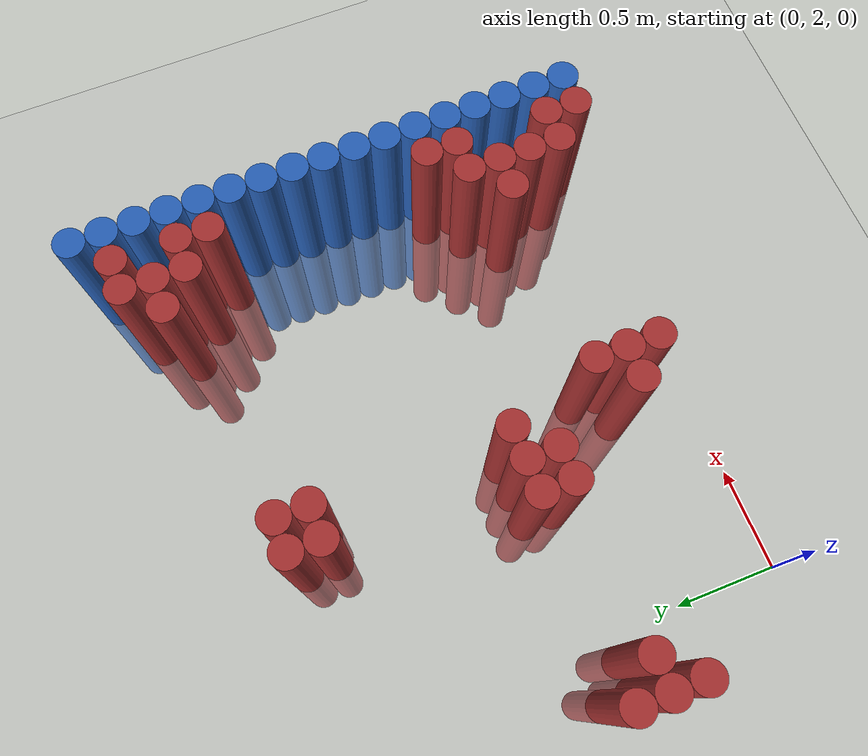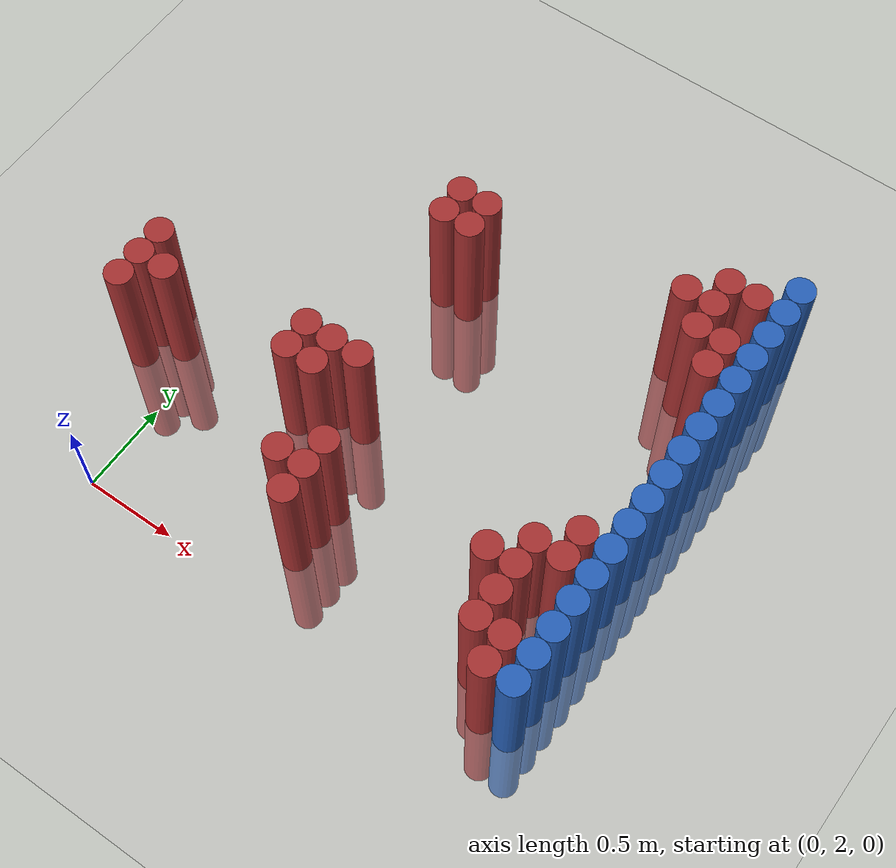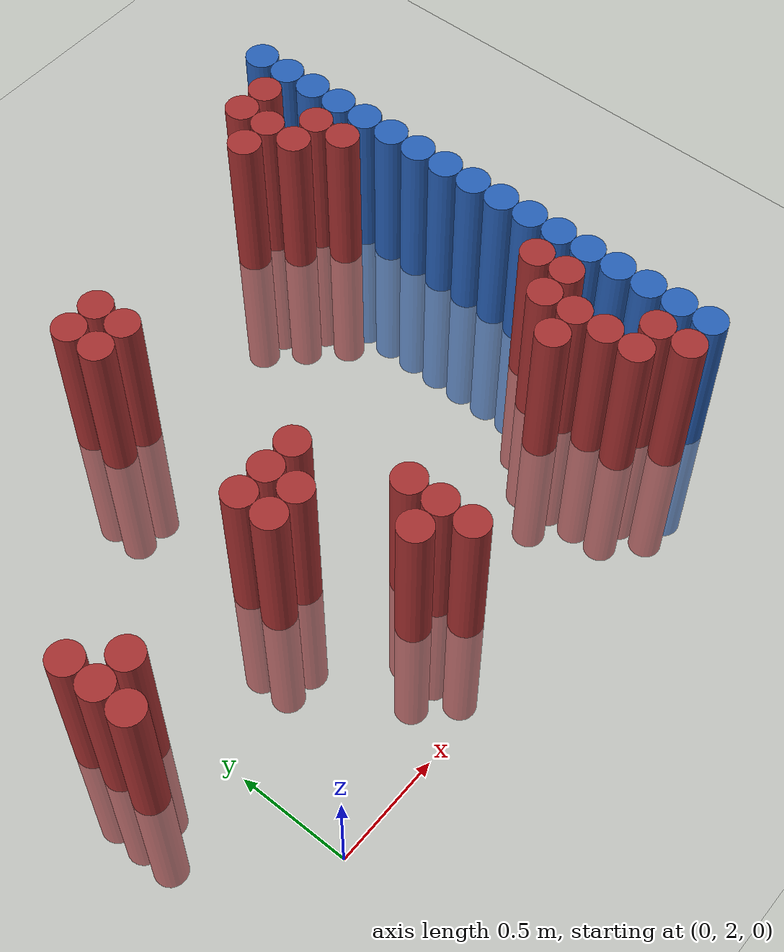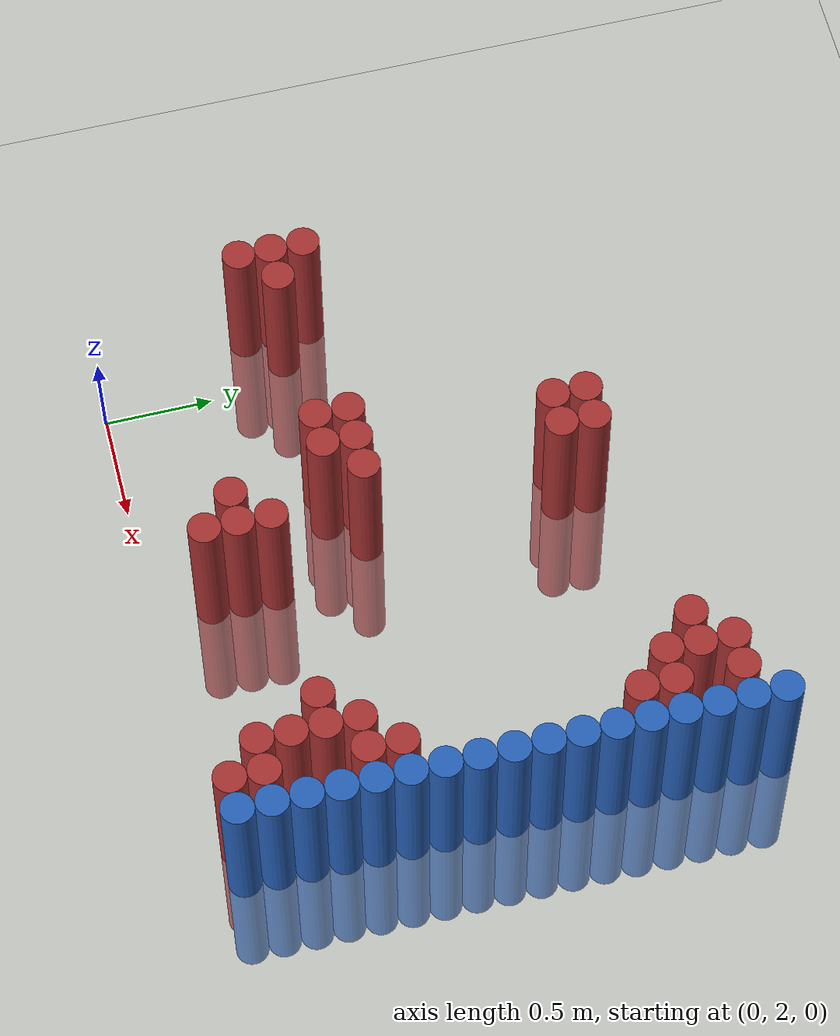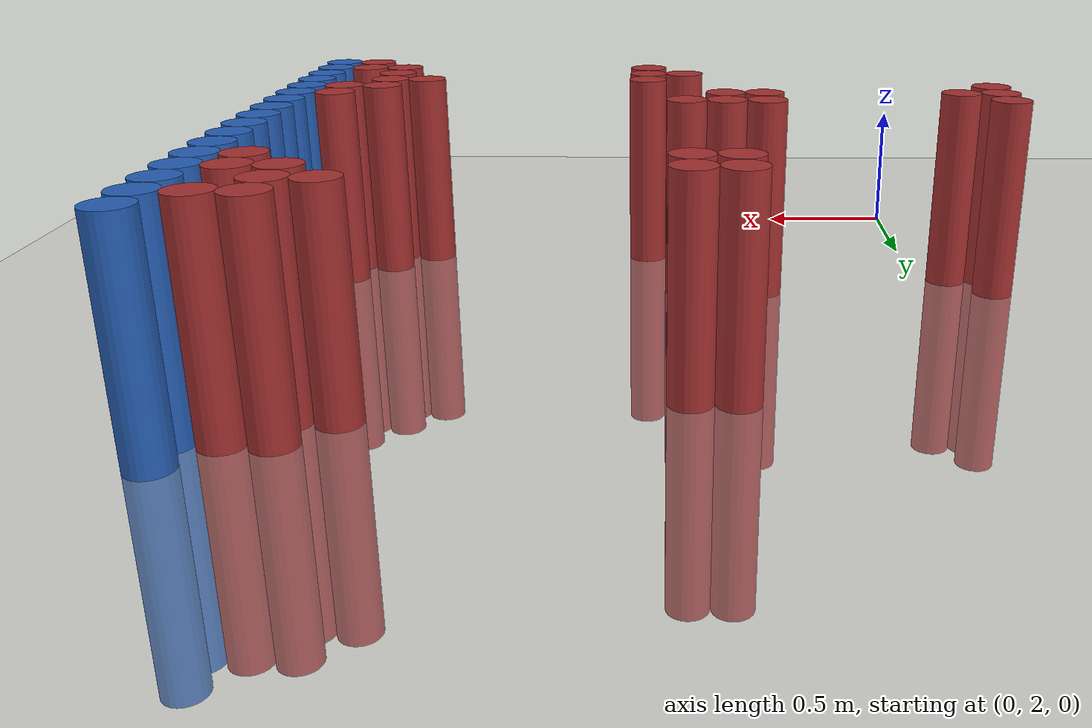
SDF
<sdf version="1.6">
 <world name="default">
  <model name="ground_plane">
   <static>1</static>
   <link name="link">
    <collision name="collision">
     <geometry><plane><normal>0 0 1</normal><size>100 100</size></plane></geometry>
     <surface><friction><ode><mu>100</mu><mu2>50</mu2></ode></friction></surface>
    </collision>
    <visual name="visual">
     <cast_shadows>0</cast_shadows>
     <geometry><plane><normal>0 0 1</normal><size>100 100</size></plane></geometry>
     <material>
      <script><uri>file://media/materials/scripts/gazebo.material</uri><name>Gazebo/Grey</name></script>
     </material>
    </visual>
   </link>
  </model>
  <model name="unit_cylinder_148">
   <static>1</static>
   <pose>-0.275000 2.725000 0.000000 0.000000 0.000000 0.000000</pose>
   <link name="link">
    <inertial>
     <mass>1</mass>
     <inertia><ixx>0.145833</ixx><ixy>0</ixy><ixz>0</ixz><iyy>0.145833</iyy><iyz>0</iyz><izz>0.125</izz></inertia>
    </inertial>
    <collision name="collision">
     <geometry><cylinder><radius>0.075000</radius><length>1.5</length></cylinder></geometry>
    </collision>
    <visual name="visual">
     <geometry><cylinder><radius>0.075000</radius><length>1.5</length></cylinder></geometry>
     <material>
      <ambient>0.648000 0.192000 0.192000 1</ambient>
      <diffuse>0.648000 0.192000 0.192000 1</diffuse>
     </material>
     <material>
      <script><name>Gazebo/Grey</name><uri>file://media/materials/scripts/gazebo.material</uri></script>
     </material>
    </visual>
   </link>
  </model>
  <model name="unit_cylinder_149">
   <static>1</static>
   <pose>-0.275000 2.875000 0.000000 0.000000 0.000000 0.000000</pose>
   <link name="link">
    <inertial>
     <mass>1</mass>
     <inertia><ixx>0.145833</ixx><ixy>0</ixy><ixz>0</ixz><iyy>0.145833</iyy><iyz>0</iyz><izz>0.125</izz></inertia>
    </inertial>
    <collision name="collision">
     <geometry><cylinder><radius>0.075000</radius><length>1.5</length></cylinder></geometry>
    </collision>
    <visual name="visual">
     <geometry><cylinder><radius>0.075000</radius><length>1.5</length></cylinder></geometry>
     <material>
      <ambient>0.648000 0.192000 0.192000 1</ambient>
      <diffuse>0.648000 0.192000 0.192000 1</diffuse>
     </material>
     <material>
      <script><name>Gazebo/Grey</name><uri>file://media/materials/scripts/gazebo.material</uri></script>
     </material>
    </visual>
   </link>
  </model>
  <model name="unit_cylinder_150">
   <static>1</static>
   <pose>-0.275000 3.025000 0.000000 0.000000 0.000000 0.000000</pose>
   <link name="link">
    <inertial>
     <mass>1</mass>
     <inertia><ixx>0.145833</ixx><ixy>0</ixy><ixz>0</ixz><iyy>0.145833</iyy><iyz>0</iyz><izz>0.125</izz></inertia>
    </inertial>
    <collision name="collision">
     <geometry><cylinder><radius>0.075000</radius><length>1.5</length></cylinder></geometry>
    </collision>
    <visual name="visual">
     <geometry><cylinder><radius>0.075000</radius><length>1.5</length></cylinder></geometry>
     <material>
      <ambient>0.648000 0.192000 0.192000 1</ambient>
      <diffuse>0.648000 0.192000 0.192000 1</diffuse>
     </material>
     <material>
      <script><name>Gazebo/Grey</name><uri>file://media/materials/scripts/gazebo.material</uri></script>
     </material>
    </visual>
   </link>
  </model>
  <model name="unit_cylinder_154">
   <static>1</static>
   <pose>-0.125000 2.875000 0.000000 0.000000 0.000000 0.000000</pose>
   <link name="link">
    <inertial>
     <mass>1</mass>
     <inertia><ixx>0.145833</ixx><ixy>0</ixy><ixz>0</ixz><iyy>0.145833</iyy><iyz>0</iyz><izz>0.125</izz></inertia>
    </inertial>
    <collision name="collision">
     <geometry><cylinder><radius>0.075000</radius><length>1.5</length></cylinder></geometry>
    </collision>
    <visual name="visual">
     <geometry><cylinder><radius>0.075000</radius><length>1.5</length></cylinder></geometry>
     <material>
      <ambient>0.648000 0.192000 0.192000 1</ambient>
      <diffuse>0.648000 0.192000 0.192000 1</diffuse>
     </material>
     <material>
      <script><name>Gazebo/Grey</name><uri>file://media/materials/scripts/gazebo.material</uri></script>
     </material>
    </visual>
   </link>
  </model>
  <model name="unit_cylinder_164">
   <static>1</static>
   <pose>0.625000 2.875000 0.000000 0.000000 0.000000 0.000000</pose>
   <link name="link">
    <inertial>
     <mass>1</mass>
     <inertia><ixx>0.145833</ixx><ixy>0</ixy><ixz>0</ixz><iyy>0.145833</iyy><iyz>0</iyz><izz>0.125</izz></inertia>
    </inertial>
    <collision name="collision">
     <geometry><cylinder><radius>0.075000</radius><length>1.5</length></cylinder></geometry>
    </collision>
    <visual name="visual">
     <geometry><cylinder><radius>0.075000</radius><length>1.5</length></cylinder></geometry>
     <material>
      <ambient>0.648000 0.192000 0.192000 1</ambient>
      <diffuse>0.648000 0.192000 0.192000 1</diffuse>
     </material>
     <material>
      <script><name>Gazebo/Grey</name><uri>file://media/materials/scripts/gazebo.material</uri></script>
     </material>
    </visual>
   </link>
  </model>
  <model name="unit_cylinder_165">
   <static>1</static>
   <pose>0.625000 3.025000 0.000000 0.000000 0.000000 0.000000</pose>
   <link name="link">
    <inertial>
     <mass>1</mass>
     <inertia><ixx>0.145833</ixx><ixy>0</ixy><ixz>0</ixz><iyy>0.145833</iyy><iyz>0</iyz><izz>0.125</izz></inertia>
    </inertial>
    <collision name="collision">
     <geometry><cylinder><radius>0.075000</radius><length>1.5</length></cylinder></geometry>
    </collision>
    <visual name="visual">
     <geometry><cylinder><radius>0.075000</radius><length>1.5</length></cylinder></geometry>
     <material>
      <ambient>0.648000 0.192000 0.192000 1</ambient>
      <diffuse>0.648000 0.192000 0.192000 1</diffuse>
     </material>
     <material>
      <script><name>Gazebo/Grey</name><uri>file://media/materials/scripts/gazebo.material</uri></script>
     </material>
    </visual>
   </link>
  </model>
  <model name="unit_cylinder_170">
   <static>1</static>
   <pose>0.775000 2.875000 0.000000 0.000000 0.000000 0.000000</pose>
   <link name="link">
    <inertial>
     <mass>1</mass>
     <inertia><ixx>0.145833</ixx><ixy>0</ixy><ixz>0</ixz><iyy>0.145833</iyy><iyz>0</iyz><izz>0.125</izz></inertia>
    </inertial>
    <collision name="collision">
     <geometry><cylinder><radius>0.075000</radius><length>1.5</length></cylinder></geometry>
    </collision>
    <visual name="visual">
     <geometry><cylinder><radius>0.075000</radius><length>1.5</length></cylinder></geometry>
     <material>
      <ambient>0.648000 0.192000 0.192000 1</ambient>
      <diffuse>0.648000 0.192000 0.192000 1</diffuse>
     </material>
     <material>
      <script><name>Gazebo/Grey</name><uri>file://media/materials/scripts/gazebo.material</uri></script>
     </material>
    </visual>
   </link>
  </model>
  <model name="unit_cylinder_171">
   <static>1</static>
   <pose>0.775000 3.025000 0.000000 0.000000 0.000000 0.000000</pose>
   <link name="link">
    <inertial>
     <mass>1</mass>
     <inertia><ixx>0.145833</ixx><ixy>0</ixy><ixz>0</ixz><iyy>0.145833</iyy><iyz>0</iyz><izz>0.125</izz></inertia>
    </inertial>
    <collision name="collision">
     <geometry><cylinder><radius>0.075000</radius><length>1.5</length></cylinder></geometry>
    </collision>
    <visual name="visual">
     <geometry><cylinder><radius>0.075000</radius><length>1.5</length></cylinder></geometry>
     <material>
      <ambient>0.648000 0.192000 0.192000 1</ambient>
      <diffuse>0.648000 0.192000 0.192000 1</diffuse>
     </material>
     <material>
      <script><name>Gazebo/Grey</name><uri>file://media/materials/scripts/gazebo.material</uri></script>
     </material>
    </visual>
   </link>
  </model>
  <model name="unit_cylinder_172">
   <static>1</static>
   <pose>0.775000 3.925000 0.000000 0.000000 0.000000 0.000000</pose>
   <link name="link">
    <inertial>
     <mass>1</mass>
     <inertia><ixx>0.145833</ixx><ixy>0</ixy><ixz>0</ixz><iyy>0.145833</iyy><iyz>0</iyz><izz>0.125</izz></inertia>
    </inertial>
    <collision name="collision">
     <geometry><cylinder><radius>0.075000</radius><length>1.5</length></cylinder></geometry>
    </collision>
    <visual name="visual">
     <geometry><cylinder><radius>0.075000</radius><length>1.5</length></cylinder></geometry>
     <material>
      <ambient>0.648000 0.192000 0.192000 1</ambient>
      <diffuse>0.648000 0.192000 0.192000 1</diffuse>
     </material>
     <material>
      <script><name>Gazebo/Grey</name><uri>file://media/materials/scripts/gazebo.material</uri></script>
     </material>
    </visual>
   </link>
  </model>
  <model name="unit_cylinder_173">
   <static>1</static>
   <pose>0.775000 4.075000 0.000000 0.000000 0.000000 0.000000</pose>
   <link name="link">
    <inertial>
     <mass>1</mass>
     <inertia><ixx>0.145833</ixx><ixy>0</ixy><ixz>0</ixz><iyy>0.145833</iyy><iyz>0</iyz><izz>0.125</izz></inertia>
    </inertial>
    <collision name="collision">
     <geometry><cylinder><radius>0.075000</radius><length>1.5</length></cylinder></geometry>
    </collision>
    <visual name="visual">
     <geometry><cylinder><radius>0.075000</radius><length>1.5</length></cylinder></geometry>
     <material>
      <ambient>0.648000 0.192000 0.192000 1</ambient>
      <diffuse>0.648000 0.192000 0.192000 1</diffuse>
     </material>
     <material>
      <script><name>Gazebo/Grey</name><uri>file://media/materials/scripts/gazebo.material</uri></script>
     </material>
    </visual>
   </link>
  </model>
  <model name="unit_cylinder_176">
   <static>1</static>
   <pose>0.925000 2.425000 0.000000 0.000000 0.000000 0.000000</pose>
   <link name="link">
    <inertial>
     <mass>1</mass>
     <inertia><ixx>0.145833</ixx><ixy>0</ixy><ixz>0</ixz><iyy>0.145833</iyy><iyz>0</iyz><izz>0.125</izz></inertia>
    </inertial>
    <collision name="collision">
     <geometry><cylinder><radius>0.075000</radius><length>1.5</length></cylinder></geometry>
    </collision>
    <visual name="visual">
     <geometry><cylinder><radius>0.075000</radius><length>1.5</length></cylinder></geometry>
     <material>
      <ambient>0.648000 0.192000 0.192000 1</ambient>
      <diffuse>0.648000 0.192000 0.192000 1</diffuse>
     </material>
     <material>
      <script><name>Gazebo/Grey</name><uri>file://media/materials/scripts/gazebo.material</uri></script>
     </material>
    </visual>
   </link>
  </model>
  <model name="unit_cylinder_177">
   <static>1</static>
   <pose>0.925000 3.025000 0.000000 0.000000 0.000000 0.000000</pose>
   <link name="link">
    <inertial>
     <mass>1</mass>
     <inertia><ixx>0.145833</ixx><ixy>0</ixy><ixz>0</ixz><iyy>0.145833</iyy><iyz>0</iyz><izz>0.125</izz></inertia>
    </inertial>
    <collision name="collision">
     <geometry><cylinder><radius>0.075000</radius><length>1.5</length></cylinder></geometry>
    </collision>
    <visual name="visual">
     <geometry><cylinder><radius>0.075000</radius><length>1.5</length></cylinder></geometry>
     <material>
      <ambient>0.648000 0.192000 0.192000 1</ambient>
      <diffuse>0.648000 0.192000 0.192000 1</diffuse>
     </material>
     <material>
      <script><name>Gazebo/Grey</name><uri>file://media/materials/scripts/gazebo.material</uri></script>
     </material>
    </visual>
   </link>
  </model>
  <model name="unit_cylinder_178">
   <static>1</static>
   <pose>0.925000 3.925000 0.000000 0.000000 0.000000 0.000000</pose>
   <link name="link">
    <inertial>
     <mass>1</mass>
     <inertia><ixx>0.145833</ixx><ixy>0</ixy><ixz>0</ixz><iyy>0.145833</iyy><iyz>0</iyz><izz>0.125</izz></inertia>
    </inertial>
    <collision name="collision">
     <geometry><cylinder><radius>0.075000</radius><length>1.5</length></cylinder></geometry>
    </collision>
    <visual name="visual">
     <geometry><cylinder><radius>0.075000</radius><length>1.5</length></cylinder></geometry>
     <material>
      <ambient>0.648000 0.192000 0.192000 1</ambient>
      <diffuse>0.648000 0.192000 0.192000 1</diffuse>
     </material>
     <material>
      <script><name>Gazebo/Grey</name><uri>file://media/materials/scripts/gazebo.material</uri></script>
     </material>
    </visual>
   </link>
  </model>
  <model name="unit_cylinder_179">
   <static>1</static>
   <pose>0.925000 4.075000 0.000000 0.000000 0.000000 0.000000</pose>
   <link name="link">
    <inertial>
     <mass>1</mass>
     <inertia><ixx>0.145833</ixx><ixy>0</ixy><ixz>0</ixz><iyy>0.145833</iyy><iyz>0</iyz><izz>0.125</izz></inertia>
    </inertial>
    <collision name="collision">
     <geometry><cylinder><radius>0.075000</radius><length>1.5</length></cylinder></geometry>
    </collision>
    <visual name="visual">
     <geometry><cylinder><radius>0.075000</radius><length>1.5</length></cylinder></geometry>
     <material>
      <ambient>0.648000 0.192000 0.192000 1</ambient>
      <diffuse>0.648000 0.192000 0.192000 1</diffuse>
     </material>
     <material>
      <script><name>Gazebo/Grey</name><uri>file://media/materials/scripts/gazebo.material</uri></script>
     </material>
    </visual>
   </link>
  </model>
  <model name="unit_cylinder_181">
   <static>1</static>
   <pose>1.075000 2.275000 0.000000 0.000000 0.000000 0.000000</pose>
   <link name="link">
    <inertial>
     <mass>1</mass>
     <inertia><ixx>0.145833</ixx><ixy>0</ixy><ixz>0</ixz><iyy>0.145833</iyy><iyz>0</iyz><izz>0.125</izz></inertia>
    </inertial>
    <collision name="collision">
     <geometry><cylinder><radius>0.075000</radius><length>1.5</length></cylinder></geometry>
    </collision>
    <visual name="visual">
     <geometry><cylinder><radius>0.075000</radius><length>1.5</length></cylinder></geometry>
     <material>
      <ambient>0.648000 0.192000 0.192000 1</ambient>
      <diffuse>0.648000 0.192000 0.192000 1</diffuse>
     </material>
     <material>
      <script><name>Gazebo/Grey</name><uri>file://media/materials/scripts/gazebo.material</uri></script>
     </material>
    </visual>
   </link>
  </model>
  <model name="unit_cylinder_182">
   <static>1</static>
   <pose>1.075000 2.425000 0.000000 0.000000 0.000000 0.000000</pose>
   <link name="link">
    <inertial>
     <mass>1</mass>
     <inertia><ixx>0.145833</ixx><ixy>0</ixy><ixz>0</ixz><iyy>0.145833</iyy><iyz>0</iyz><izz>0.125</izz></inertia>
    </inertial>
    <collision name="collision">
     <geometry><cylinder><radius>0.075000</radius><length>1.5</length></cylinder></geometry>
    </collision>
    <visual name="visual">
     <geometry><cylinder><radius>0.075000</radius><length>1.5</length></cylinder></geometry>
     <material>
      <ambient>0.648000 0.192000 0.192000 1</ambient>
      <diffuse>0.648000 0.192000 0.192000 1</diffuse>
     </material>
     <material>
      <script><name>Gazebo/Grey</name><uri>file://media/materials/scripts/gazebo.material</uri></script>
     </material>
    </visual>
   </link>
  </model>
  <model name="unit_cylinder_183">
   <static>1</static>
   <pose>1.075000 2.575000 0.000000 0.000000 0.000000 0.000000</pose>
   <link name="link">
    <inertial>
     <mass>1</mass>
     <inertia><ixx>0.145833</ixx><ixy>0</ixy><ixz>0</ixz><iyy>0.145833</iyy><iyz>0</iyz><izz>0.125</izz></inertia>
    </inertial>
    <collision name="collision">
     <geometry><cylinder><radius>0.075000</radius><length>1.5</length></cylinder></geometry>
    </collision>
    <visual name="visual">
     <geometry><cylinder><radius>0.075000</radius><length>1.5</length></cylinder></geometry>
     <material>
      <ambient>0.648000 0.192000 0.192000 1</ambient>
      <diffuse>0.648000 0.192000 0.192000 1</diffuse>
     </material>
     <material>
      <script><name>Gazebo/Grey</name><uri>file://media/materials/scripts/gazebo.material</uri></script>
     </material>
    </visual>
   </link>
  </model>
  <model name="unit_cylinder_194">
   <static>1</static>
   <pose>1.975000 2.575000 0.000000 0.000000 0.000000 0.000000</pose>
   <link name="link">
    <inertial>
     <mass>1</mass>
     <inertia><ixx>0.145833</ixx><ixy>0</ixy><ixz>0</ixz><iyy>0.145833</iyy><iyz>0</iyz><izz>0.125</izz></inertia>
    </inertial>
    <collision name="collision">
     <geometry><cylinder><radius>0.075000</radius><length>1.5</length></cylinder></geometry>
    </collision>
    <visual name="visual">
     <geometry><cylinder><radius>0.075000</radius><length>1.5</length></cylinder></geometry>
     <material>
      <ambient>0.648000 0.192000 0.192000 1</ambient>
      <diffuse>0.648000 0.192000 0.192000 1</diffuse>
     </material>
     <material>
      <script><name>Gazebo/Grey</name><uri>file://media/materials/scripts/gazebo.material</uri></script>
     </material>
    </visual>
   </link>
  </model>
  <model name="unit_cylinder_195">
   <static>1</static>
   <pose>1.975000 4.225000 0.000000 0.000000 0.000000 0.000000</pose>
   <link name="link">
    <inertial>
     <mass>1</mass>
     <inertia><ixx>0.145833</ixx><ixy>0</ixy><ixz>0</ixz><iyy>0.145833</iyy><iyz>0</iyz><izz>0.125</izz></inertia>
    </inertial>
    <collision name="collision">
     <geometry><cylinder><radius>0.075000</radius><length>1.5</length></cylinder></geometry>
    </collision>
    <visual name="visual">
     <geometry><cylinder><radius>0.075000</radius><length>1.5</length></cylinder></geometry>
     <material>
      <ambient>0.648000 0.192000 0.192000 1</ambient>
      <diffuse>0.648000 0.192000 0.192000 1</diffuse>
     </material>
     <material>
      <script><name>Gazebo/Grey</name><uri>file://media/materials/scripts/gazebo.material</uri></script>
     </material>
    </visual>
   </link>
  </model>
  <model name="unit_cylinder_197">
   <static>1</static>
   <pose>2.125000 2.275000 0.000000 0.000000 0.000000 0.000000</pose>
   <link name="link">
    <inertial>
     <mass>1</mass>
     <inertia><ixx>0.145833</ixx><ixy>0</ixy><ixz>0</ixz><iyy>0.145833</iyy><iyz>0</iyz><izz>0.125</izz></inertia>
    </inertial>
    <collision name="collision">
     <geometry><cylinder><radius>0.075000</radius><length>1.5</length></cylinder></geometry>
    </collision>
    <visual name="visual">
     <geometry><cylinder><radius>0.075000</radius><length>1.5</length></cylinder></geometry>
     <material>
      <ambient>0.648000 0.192000 0.192000 1</ambient>
      <diffuse>0.648000 0.192000 0.192000 1</diffuse>
     </material>
     <material>
      <script><name>Gazebo/Grey</name><uri>file://media/materials/scripts/gazebo.material</uri></script>
     </material>
    </visual>
   </link>
  </model>
  <model name="unit_cylinder_198">
   <static>1</static>
   <pose>2.125000 2.425000 0.000000 0.000000 0.000000 0.000000</pose>
   <link name="link">
    <inertial>
     <mass>1</mass>
     <inertia><ixx>0.145833</ixx><ixy>0</ixy><ixz>0</ixz><iyy>0.145833</iyy><iyz>0</iyz><izz>0.125</izz></inertia>
    </inertial>
    <collision name="collision">
     <geometry><cylinder><radius>0.075000</radius><length>1.5</length></cylinder></geometry>
    </collision>
    <visual name="visual">
     <geometry><cylinder><radius>0.075000</radius><length>1.5</length></cylinder></geometry>
     <material>
      <ambient>0.648000 0.192000 0.192000 1</ambient>
      <diffuse>0.648000 0.192000 0.192000 1</diffuse>
     </material>
     <material>
      <script><name>Gazebo/Grey</name><uri>file://media/materials/scripts/gazebo.material</uri></script>
     </material>
    </visual>
   </link>
  </model>
  <model name="unit_cylinder_199">
   <static>1</static>
   <pose>2.125000 2.575000 0.000000 0.000000 0.000000 0.000000</pose>
   <link name="link">
    <inertial>
     <mass>1</mass>
     <inertia><ixx>0.145833</ixx><ixy>0</ixy><ixz>0</ixz><iyy>0.145833</iyy><iyz>0</iyz><izz>0.125</izz></inertia>
    </inertial>
    <collision name="collision">
     <geometry><cylinder><radius>0.075000</radius><length>1.5</length></cylinder></geometry>
    </collision>
    <visual name="visual">
     <geometry><cylinder><radius>0.075000</radius><length>1.5</length></cylinder></geometry>
     <material>
      <ambient>0.648000 0.192000 0.192000 1</ambient>
      <diffuse>0.648000 0.192000 0.192000 1</diffuse>
     </material>
     <material>
      <script><name>Gazebo/Grey</name><uri>file://media/materials/scripts/gazebo.material</uri></script>
     </material>
    </visual>
   </link>
  </model>
  <model name="unit_cylinder_200">
   <static>1</static>
   <pose>2.125000 2.725000 0.000000 0.000000 0.000000 0.000000</pose>
   <link name="link">
    <inertial>
     <mass>1</mass>
     <inertia><ixx>0.145833</ixx><ixy>0</ixy><ixz>0</ixz><iyy>0.145833</iyy><iyz>0</iyz><izz>0.125</izz></inertia>
    </inertial>
    <collision name="collision">
     <geometry><cylinder><radius>0.075000</radius><length>1.5</length></cylinder></geometry>
    </collision>
    <visual name="visual">
     <geometry><cylinder><radius>0.075000</radius><length>1.5</length></cylinder></geometry>
     <material>
      <ambient>0.648000 0.192000 0.192000 1</ambient>
      <diffuse>0.648000 0.192000 0.192000 1</diffuse>
     </material>
     <material>
      <script><name>Gazebo/Grey</name><uri>file://media/materials/scripts/gazebo.material</uri></script>
     </material>
    </visual>
   </link>
  </model>
  <model name="unit_cylinder_201">
   <static>1</static>
   <pose>2.125000 4.075000 0.000000 0.000000 0.000000 0.000000</pose>
   <link name="link">
    <inertial>
     <mass>1</mass>
     <inertia><ixx>0.145833</ixx><ixy>0</ixy><ixz>0</ixz><iyy>0.145833</iyy><iyz>0</iyz><izz>0.125</izz></inertia>
    </inertial>
    <collision name="collision">
     <geometry><cylinder><radius>0.075000</radius><length>1.5</length></cylinder></geometry>
    </collision>
    <visual name="visual">
     <geometry><cylinder><radius>0.075000</radius><length>1.5</length></cylinder></geometry>
     <material>
      <ambient>0.648000 0.192000 0.192000 1</ambient>
      <diffuse>0.648000 0.192000 0.192000 1</diffuse>
     </material>
     <material>
      <script><name>Gazebo/Grey</name><uri>file://media/materials/scripts/gazebo.material</uri></script>
     </material>
    </visual>
   </link>
  </model>
  <model name="unit_cylinder_202">
   <static>1</static>
   <pose>2.125000 4.225000 0.000000 0.000000 0.000000 0.000000</pose>
   <link name="link">
    <inertial>
     <mass>1</mass>
     <inertia><ixx>0.145833</ixx><ixy>0</ixy><ixz>0</ixz><iyy>0.145833</iyy><iyz>0</iyz><izz>0.125</izz></inertia>
    </inertial>
    <collision name="collision">
     <geometry><cylinder><radius>0.075000</radius><length>1.5</length></cylinder></geometry>
    </collision>
    <visual name="visual">
     <geometry><cylinder><radius>0.075000</radius><length>1.5</length></cylinder></geometry>
     <material>
      <ambient>0.648000 0.192000 0.192000 1</ambient>
      <diffuse>0.648000 0.192000 0.192000 1</diffuse>
     </material>
     <material>
      <script><name>Gazebo/Grey</name><uri>file://media/materials/scripts/gazebo.material</uri></script>
     </material>
    </visual>
   </link>
  </model>
  <model name="unit_cylinder_203">
   <static>1</static>
   <pose>2.125000 4.375000 0.000000 0.000000 0.000000 0.000000</pose>
   <link name="link">
    <inertial>
     <mass>1</mass>
     <inertia><ixx>0.145833</ixx><ixy>0</ixy><ixz>0</ixz><iyy>0.145833</iyy><iyz>0</iyz><izz>0.125</izz></inertia>
    </inertial>
    <collision name="collision">
     <geometry><cylinder><radius>0.075000</radius><length>1.5</length></cylinder></geometry>
    </collision>
    <visual name="visual">
     <geometry><cylinder><radius>0.075000</radius><length>1.5</length></cylinder></geometry>
     <material>
      <ambient>0.648000 0.192000 0.192000 1</ambient>
      <diffuse>0.648000 0.192000 0.192000 1</diffuse>
     </material>
     <material>
      <script><name>Gazebo/Grey</name><uri>file://media/materials/scripts/gazebo.material</uri></script>
     </material>
    </visual>
   </link>
  </model>
  <model name="unit_cylinder_210">
   <static>1</static>
   <pose>2.275000 2.125000 0.000000 0.000000 0.000000 0.000000</pose>
   <link name="link">
    <inertial>
     <mass>1</mass>
     <inertia><ixx>0.145833</ixx><ixy>0</ixy><ixz>0</ixz><iyy>0.145833</iyy><iyz>0</iyz><izz>0.125</izz></inertia>
    </inertial>
    <collision name="collision">
     <geometry><cylinder><radius>0.075000</radius><length>1.5</length></cylinder></geometry>
    </collision>
    <visual name="visual">
     <geometry><cylinder><radius>0.075000</radius><length>1.5</length></cylinder></geometry>
     <material>
      <ambient>0.648000 0.192000 0.192000 1</ambient>
      <diffuse>0.648000 0.192000 0.192000 1</diffuse>
     </material>
     <material>
      <script><name>Gazebo/Grey</name><uri>file://media/materials/scripts/gazebo.material</uri></script>
     </material>
    </visual>
   </link>
  </model>
  <model name="unit_cylinder_211">
   <static>1</static>
   <pose>2.275000 2.275000 0.000000 0.000000 0.000000 0.000000</pose>
   <link name="link">
    <inertial>
     <mass>1</mass>
     <inertia><ixx>0.145833</ixx><ixy>0</ixy><ixz>0</ixz><iyy>0.145833</iyy><iyz>0</iyz><izz>0.125</izz></inertia>
    </inertial>
    <collision name="collision">
     <geometry><cylinder><radius>0.075000</radius><length>1.5</length></cylinder></geometry>
    </collision>
    <visual name="visual">
     <geometry><cylinder><radius>0.075000</radius><length>1.5</length></cylinder></geometry>
     <material>
      <ambient>0.648000 0.192000 0.192000 1</ambient>
      <diffuse>0.648000 0.192000 0.192000 1</diffuse>
     </material>
     <material>
      <script><name>Gazebo/Grey</name><uri>file://media/materials/scripts/gazebo.material</uri></script>
     </material>
    </visual>
   </link>
  </model>
  <model name="unit_cylinder_212">
   <static>1</static>
   <pose>2.275000 2.725000 0.000000 0.000000 0.000000 0.000000</pose>
   <link name="link">
    <inertial>
     <mass>1</mass>
     <inertia><ixx>0.145833</ixx><ixy>0</ixy><ixz>0</ixz><iyy>0.145833</iyy><iyz>0</iyz><izz>0.125</izz></inertia>
    </inertial>
    <collision name="collision">
     <geometry><cylinder><radius>0.075000</radius><length>1.5</length></cylinder></geometry>
    </collision>
    <visual name="visual">
     <geometry><cylinder><radius>0.075000</radius><length>1.5</length></cylinder></geometry>
     <material>
      <ambient>0.648000 0.192000 0.192000 1</ambient>
      <diffuse>0.648000 0.192000 0.192000 1</diffuse>
     </material>
     <material>
      <script><name>Gazebo/Grey</name><uri>file://media/materials/scripts/gazebo.material</uri></script>
     </material>
    </visual>
   </link>
  </model>
  <model name="unit_cylinder_213">
   <static>1</static>
   <pose>2.275000 2.875000 0.000000 0.000000 0.000000 0.000000</pose>
   <link name="link">
    <inertial>
     <mass>1</mass>
     <inertia><ixx>0.145833</ixx><ixy>0</ixy><ixz>0</ixz><iyy>0.145833</iyy><iyz>0</iyz><izz>0.125</izz></inertia>
    </inertial>
    <collision name="collision">
     <geometry><cylinder><radius>0.075000</radius><length>1.5</length></cylinder></geometry>
    </collision>
    <visual name="visual">
     <geometry><cylinder><radius>0.075000</radius><length>1.5</length></cylinder></geometry>
     <material>
      <ambient>0.648000 0.192000 0.192000 1</ambient>
      <diffuse>0.648000 0.192000 0.192000 1</diffuse>
     </material>
     <material>
      <script><name>Gazebo/Grey</name><uri>file://media/materials/scripts/gazebo.material</uri></script>
     </material>
    </visual>
   </link>
  </model>
  <model name="unit_cylinder_214">
   <static>1</static>
   <pose>2.275000 3.925000 0.000000 0.000000 0.000000 0.000000</pose>
   <link name="link">
    <inertial>
     <mass>1</mass>
     <inertia><ixx>0.145833</ixx><ixy>0</ixy><ixz>0</ixz><iyy>0.145833</iyy><iyz>0</iyz><izz>0.125</izz></inertia>
    </inertial>
    <collision name="collision">
     <geometry><cylinder><radius>0.075000</radius><length>1.5</length></cylinder></geometry>
    </collision>
    <visual name="visual">
     <geometry><cylinder><radius>0.075000</radius><length>1.5</length></cylinder></geometry>
     <material>
      <ambient>0.648000 0.192000 0.192000 1</ambient>
      <diffuse>0.648000 0.192000 0.192000 1</diffuse>
     </material>
     <material>
      <script><name>Gazebo/Grey</name><uri>file://media/materials/scripts/gazebo.material</uri></script>
     </material>
    </visual>
   </link>
  </model>
  <model name="unit_cylinder_215">
   <static>1</static>
   <pose>2.275000 4.075000 0.000000 0.000000 0.000000 0.000000</pose>
   <link name="link">
    <inertial>
     <mass>1</mass>
     <inertia><ixx>0.145833</ixx><ixy>0</ixy><ixz>0</ixz><iyy>0.145833</iyy><iyz>0</iyz><izz>0.125</izz></inertia>
    </inertial>
    <collision name="collision">
     <geometry><cylinder><radius>0.075000</radius><length>1.5</length></cylinder></geometry>
    </collision>
    <visual name="visual">
     <geometry><cylinder><radius>0.075000</radius><length>1.5</length></cylinder></geometry>
     <material>
      <ambient>0.648000 0.192000 0.192000 1</ambient>
      <diffuse>0.648000 0.192000 0.192000 1</diffuse>
     </material>
     <material>
      <script><name>Gazebo/Grey</name><uri>file://media/materials/scripts/gazebo.material</uri></script>
     </material>
    </visual>
   </link>
  </model>
  <model name="unit_cylinder_216">
   <static>1</static>
   <pose>2.275000 4.375000 0.000000 0.000000 0.000000 0.000000</pose>
   <link name="link">
    <inertial>
     <mass>1</mass>
     <inertia><ixx>0.145833</ixx><ixy>0</ixy><ixz>0</ixz><iyy>0.145833</iyy><iyz>0</iyz><izz>0.125</izz></inertia>
    </inertial>
    <collision name="collision">
     <geometry><cylinder><radius>0.075000</radius><length>1.5</length></cylinder></geometry>
    </collision>
    <visual name="visual">
     <geometry><cylinder><radius>0.075000</radius><length>1.5</length></cylinder></geometry>
     <material>
      <ambient>0.648000 0.192000 0.192000 1</ambient>
      <diffuse>0.648000 0.192000 0.192000 1</diffuse>
     </material>
     <material>
      <script><name>Gazebo/Grey</name><uri>file://media/materials/scripts/gazebo.material</uri></script>
     </material>
    </visual>
   </link>
  </model>
  <model name="unit_cylinder_230">
   <static>1</static>
   <pose>2.425000 2.125000 0.000000 0.000000 0.000000 0.000000</pose>
   <link name="link">
    <inertial>
     <mass>1</mass>
     <inertia><ixx>0.145833</ixx><ixy>0</ixy><ixz>0</ixz><iyy>0.145833</iyy><iyz>0</iyz><izz>0.125</izz></inertia>
    </inertial>
    <collision name="collision">
     <geometry><cylinder><radius>0.075000</radius><length>1.5</length></cylinder></geometry>
    </collision>
    <visual name="visual">
     <geometry><cylinder><radius>0.075000</radius><length>1.5</length></cylinder></geometry>
     <material>
      <ambient>0.152000 0.379000 0.720000 1</ambient>
      <diffuse>0.152000 0.379000 0.720000 1</diffuse>
     </material>
     <material>
      <script><name>Gazebo/Grey</name><uri>file://media/materials/scripts/gazebo.material</uri></script>
     </material>
    </visual>
   </link>
  </model>
  <model name="unit_cylinder_231">
   <static>1</static>
   <pose>2.425000 2.275000 0.000000 0.000000 0.000000 0.000000</pose>
   <link name="link">
    <inertial>
     <mass>1</mass>
     <inertia><ixx>0.145833</ixx><ixy>0</ixy><ixz>0</ixz><iyy>0.145833</iyy><iyz>0</iyz><izz>0.125</izz></inertia>
    </inertial>
    <collision name="collision">
     <geometry><cylinder><radius>0.075000</radius><length>1.5</length></cylinder></geometry>
    </collision>
    <visual name="visual">
     <geometry><cylinder><radius>0.075000</radius><length>1.5</length></cylinder></geometry>
     <material>
      <ambient>0.152000 0.379000 0.720000 1</ambient>
      <diffuse>0.152000 0.379000 0.720000 1</diffuse>
     </material>
     <material>
      <script><name>Gazebo/Grey</name><uri>file://media/materials/scripts/gazebo.material</uri></script>
     </material>
    </visual>
   </link>
  </model>
  <model name="unit_cylinder_232">
   <static>1</static>
   <pose>2.425000 2.425000 0.000000 0.000000 0.000000 0.000000</pose>
   <link name="link">
    <inertial>
     <mass>1</mass>
     <inertia><ixx>0.145833</ixx><ixy>0</ixy><ixz>0</ixz><iyy>0.145833</iyy><iyz>0</iyz><izz>0.125</izz></inertia>
    </inertial>
    <collision name="collision">
     <geometry><cylinder><radius>0.075000</radius><length>1.5</length></cylinder></geometry>
    </collision>
    <visual name="visual">
     <geometry><cylinder><radius>0.075000</radius><length>1.5</length></cylinder></geometry>
     <material>
      <ambient>0.152000 0.379000 0.720000 1</ambient>
      <diffuse>0.152000 0.379000 0.720000 1</diffuse>
     </material>
     <material>
      <script><name>Gazebo/Grey</name><uri>file://media/materials/scripts/gazebo.material</uri></script>
     </material>
    </visual>
   </link>
  </model>
  <model name="unit_cylinder_233">
   <static>1</static>
   <pose>2.425000 2.575000 0.000000 0.000000 0.000000 0.000000</pose>
   <link name="link">
    <inertial>
     <mass>1</mass>
     <inertia><ixx>0.145833</ixx><ixy>0</ixy><ixz>0</ixz><iyy>0.145833</iyy><iyz>0</iyz><izz>0.125</izz></inertia>
    </inertial>
    <collision name="collision">
     <geometry><cylinder><radius>0.075000</radius><length>1.5</length></cylinder></geometry>
    </collision>
    <visual name="visual">
     <geometry><cylinder><radius>0.075000</radius><length>1.5</length></cylinder></geometry>
     <material>
      <ambient>0.152000 0.379000 0.720000 1</ambient>
      <diffuse>0.152000 0.379000 0.720000 1</diffuse>
     </material>
     <material>
      <script><name>Gazebo/Grey</name><uri>file://media/materials/scripts/gazebo.material</uri></script>
     </material>
    </visual>
   </link>
  </model>
  <model name="unit_cylinder_234">
   <static>1</static>
   <pose>2.425000 2.725000 0.000000 0.000000 0.000000 0.000000</pose>
   <link name="link">
    <inertial>
     <mass>1</mass>
     <inertia><ixx>0.145833</ixx><ixy>0</ixy><ixz>0</ixz><iyy>0.145833</iyy><iyz>0</iyz><izz>0.125</izz></inertia>
    </inertial>
    <collision name="collision">
     <geometry><cylinder><radius>0.075000</radius><length>1.5</length></cylinder></geometry>
    </collision>
    <visual name="visual">
     <geometry><cylinder><radius>0.075000</radius><length>1.5</length></cylinder></geometry>
     <material>
      <ambient>0.152000 0.379000 0.720000 1</ambient>
      <diffuse>0.152000 0.379000 0.720000 1</diffuse>
     </material>
     <material>
      <script><name>Gazebo/Grey</name><uri>file://media/materials/scripts/gazebo.material</uri></script>
     </material>
    </visual>
   </link>
  </model>
  <model name="unit_cylinder_235">
   <static>1</static>
   <pose>2.425000 2.875000 0.000000 0.000000 0.000000 0.000000</pose>
   <link name="link">
    <inertial>
     <mass>1</mass>
     <inertia><ixx>0.145833</ixx><ixy>0</ixy><ixz>0</ixz><iyy>0.145833</iyy><iyz>0</iyz><izz>0.125</izz></inertia>
    </inertial>
    <collision name="collision">
     <geometry><cylinder><radius>0.075000</radius><length>1.5</length></cylinder></geometry>
    </collision>
    <visual name="visual">
     <geometry><cylinder><radius>0.075000</radius><length>1.5</length></cylinder></geometry>
     <material>
      <ambient>0.152000 0.379000 0.720000 1</ambient>
      <diffuse>0.152000 0.379000 0.720000 1</diffuse>
     </material>
     <material>
      <script><name>Gazebo/Grey</name><uri>file://media/materials/scripts/gazebo.material</uri></script>
     </material>
    </visual>
   </link>
  </model>
  <model name="unit_cylinder_236">
   <static>1</static>
   <pose>2.425000 3.025000 0.000000 0.000000 0.000000 0.000000</pose>
   <link name="link">
    <inertial>
     <mass>1</mass>
     <inertia><ixx>0.145833</ixx><ixy>0</ixy><ixz>0</ixz><iyy>0.145833</iyy><iyz>0</iyz><izz>0.125</izz></inertia>
    </inertial>
    <collision name="collision">
     <geometry><cylinder><radius>0.075000</radius><length>1.5</length></cylinder></geometry>
    </collision>
    <visual name="visual">
     <geometry><cylinder><radius>0.075000</radius><length>1.5</length></cylinder></geometry>
     <material>
      <ambient>0.152000 0.379000 0.720000 1</ambient>
      <diffuse>0.152000 0.379000 0.720000 1</diffuse>
     </material>
     <material>
      <script><name>Gazebo/Grey</name><uri>file://media/materials/scripts/gazebo.material</uri></script>
     </material>
    </visual>
   </link>
  </model>
  <model name="unit_cylinder_237">
   <static>1</static>
   <pose>2.425000 3.175000 0.000000 0.000000 0.000000 0.000000</pose>
   <link name="link">
    <inertial>
     <mass>1</mass>
     <inertia><ixx>0.145833</ixx><ixy>0</ixy><ixz>0</ixz><iyy>0.145833</iyy><iyz>0</iyz><izz>0.125</izz></inertia>
    </inertial>
    <collision name="collision">
     <geometry><cylinder><radius>0.075000</radius><length>1.5</length></cylinder></geometry>
    </collision>
    <visual name="visual">
     <geometry><cylinder><radius>0.075000</radius><length>1.5</length></cylinder></geometry>
     <material>
      <ambient>0.152000 0.379000 0.720000 1</ambient>
      <diffuse>0.152000 0.379000 0.720000 1</diffuse>
     </material>
     <material>
      <script><name>Gazebo/Grey</name><uri>file://media/materials/scripts/gazebo.material</uri></script>
     </material>
    </visual>
   </link>
  </model>
  <model name="unit_cylinder_238">
   <static>1</static>
   <pose>2.425000 3.325000 0.000000 0.000000 0.000000 0.000000</pose>
   <link name="link">
    <inertial>
     <mass>1</mass>
     <inertia><ixx>0.145833</ixx><ixy>0</ixy><ixz>0</ixz><iyy>0.145833</iyy><iyz>0</iyz><izz>0.125</izz></inertia>
    </inertial>
    <collision name="collision">
     <geometry><cylinder><radius>0.075000</radius><length>1.5</length></cylinder></geometry>
    </collision>
    <visual name="visual">
     <geometry><cylinder><radius>0.075000</radius><length>1.5</length></cylinder></geometry>
     <material>
      <ambient>0.152000 0.379000 0.720000 1</ambient>
      <diffuse>0.152000 0.379000 0.720000 1</diffuse>
     </material>
     <material>
      <script><name>Gazebo/Grey</name><uri>file://media/materials/scripts/gazebo.material</uri></script>
     </material>
    </visual>
   </link>
  </model>
  <model name="unit_cylinder_239">
   <static>1</static>
   <pose>2.425000 3.475000 0.000000 0.000000 0.000000 0.000000</pose>
   <link name="link">
    <inertial>
     <mass>1</mass>
     <inertia><ixx>0.145833</ixx><ixy>0</ixy><ixz>0</ixz><iyy>0.145833</iyy><iyz>0</iyz><izz>0.125</izz></inertia>
    </inertial>
    <collision name="collision">
     <geometry><cylinder><radius>0.075000</radius><length>1.5</length></cylinder></geometry>
    </collision>
    <visual name="visual">
     <geometry><cylinder><radius>0.075000</radius><length>1.5</length></cylinder></geometry>
     <material>
      <ambient>0.152000 0.379000 0.720000 1</ambient>
      <diffuse>0.152000 0.379000 0.720000 1</diffuse>
     </material>
     <material>
      <script><name>Gazebo/Grey</name><uri>file://media/materials/scripts/gazebo.material</uri></script>
     </material>
    </visual>
   </link>
  </model>
  <model name="unit_cylinder_240">
   <static>1</static>
   <pose>2.425000 3.625000 0.000000 0.000000 0.000000 0.000000</pose>
   <link name="link">
    <inertial>
     <mass>1</mass>
     <inertia><ixx>0.145833</ixx><ixy>0</ixy><ixz>0</ixz><iyy>0.145833</iyy><iyz>0</iyz><izz>0.125</izz></inertia>
    </inertial>
    <collision name="collision">
     <geometry><cylinder><radius>0.075000</radius><length>1.5</length></cylinder></geometry>
    </collision>
    <visual name="visual">
     <geometry><cylinder><radius>0.075000</radius><length>1.5</length></cylinder></geometry>
     <material>
      <ambient>0.152000 0.379000 0.720000 1</ambient>
      <diffuse>0.152000 0.379000 0.720000 1</diffuse>
     </material>
     <material>
      <script><name>Gazebo/Grey</name><uri>file://media/materials/scripts/gazebo.material</uri></script>
     </material>
    </visual>
   </link>
  </model>
  <model name="unit_cylinder_241">
   <static>1</static>
   <pose>2.425000 3.775000 0.000000 0.000000 0.000000 0.000000</pose>
   <link name="link">
    <inertial>
     <mass>1</mass>
     <inertia><ixx>0.145833</ixx><ixy>0</ixy><ixz>0</ixz><iyy>0.145833</iyy><iyz>0</iyz><izz>0.125</izz></inertia>
    </inertial>
    <collision name="collision">
     <geometry><cylinder><radius>0.075000</radius><length>1.5</length></cylinder></geometry>
    </collision>
    <visual name="visual">
     <geometry><cylinder><radius>0.075000</radius><length>1.5</length></cylinder></geometry>
     <material>
      <ambient>0.152000 0.379000 0.720000 1</ambient>
      <diffuse>0.152000 0.379000 0.720000 1</diffuse>
     </material>
     <material>
      <script><name>Gazebo/Grey</name><uri>file://media/materials/scripts/gazebo.material</uri></script>
     </material>
    </visual>
   </link>
  </model>
  <model name="unit_cylinder_242">
   <static>1</static>
   <pose>2.425000 3.925000 0.000000 0.000000 0.000000 0.000000</pose>
   <link name="link">
    <inertial>
     <mass>1</mass>
     <inertia><ixx>0.145833</ixx><ixy>0</ixy><ixz>0</ixz><iyy>0.145833</iyy><iyz>0</iyz><izz>0.125</izz></inertia>
    </inertial>
    <collision name="collision">
     <geometry><cylinder><radius>0.075000</radius><length>1.5</length></cylinder></geometry>
    </collision>
    <visual name="visual">
     <geometry><cylinder><radius>0.075000</radius><length>1.5</length></cylinder></geometry>
     <material>
      <ambient>0.152000 0.379000 0.720000 1</ambient>
      <diffuse>0.152000 0.379000 0.720000 1</diffuse>
     </material>
     <material>
      <script><name>Gazebo/Grey</name><uri>file://media/materials/scripts/gazebo.material</uri></script>
     </material>
    </visual>
   </link>
  </model>
  <model name="unit_cylinder_243">
   <static>1</static>
   <pose>2.425000 4.075000 0.000000 0.000000 0.000000 0.000000</pose>
   <link name="link">
    <inertial>
     <mass>1</mass>
     <inertia><ixx>0.145833</ixx><ixy>0</ixy><ixz>0</ixz><iyy>0.145833</iyy><iyz>0</iyz><izz>0.125</izz></inertia>
    </inertial>
    <collision name="collision">
     <geometry><cylinder><radius>0.075000</radius><length>1.5</length></cylinder></geometry>
    </collision>
    <visual name="visual">
     <geometry><cylinder><radius>0.075000</radius><length>1.5</length></cylinder></geometry>
     <material>
      <ambient>0.152000 0.379000 0.720000 1</ambient>
      <diffuse>0.152000 0.379000 0.720000 1</diffuse>
     </material>
     <material>
      <script><name>Gazebo/Grey</name><uri>file://media/materials/scripts/gazebo.material</uri></script>
     </material>
    </visual>
   </link>
  </model>
  <model name="unit_cylinder_244">
   <static>1</static>
   <pose>2.425000 4.225000 0.000000 0.000000 0.000000 0.000000</pose>
   <link name="link">
    <inertial>
     <mass>1</mass>
     <inertia><ixx>0.145833</ixx><ixy>0</ixy><ixz>0</ixz><iyy>0.145833</iyy><iyz>0</iyz><izz>0.125</izz></inertia>
    </inertial>
    <collision name="collision">
     <geometry><cylinder><radius>0.075000</radius><length>1.5</length></cylinder></geometry>
    </collision>
    <visual name="visual">
     <geometry><cylinder><radius>0.075000</radius><length>1.5</length></cylinder></geometry>
     <material>
      <ambient>0.152000 0.379000 0.720000 1</ambient>
      <diffuse>0.152000 0.379000 0.720000 1</diffuse>
     </material>
     <material>
      <script><name>Gazebo/Grey</name><uri>file://media/materials/scripts/gazebo.material</uri></script>
     </material>
    </visual>
   </link>
  </model>
  <model name="unit_cylinder_245">
   <static>1</static>
   <pose>2.425000 4.375000 0.000000 0.000000 0.000000 0.000000</pose>
   <link name="link">
    <inertial>
     <mass>1</mass>
     <inertia><ixx>0.145833</ixx><ixy>0</ixy><ixz>0</ixz><iyy>0.145833</iyy><iyz>0</iyz><izz>0.125</izz></inertia>
    </inertial>
    <collision name="collision">
     <geometry><cylinder><radius>0.075000</radius><length>1.5</length></cylinder></geometry>
    </collision>
    <visual name="visual">
     <geometry><cylinder><radius>0.075000</radius><length>1.5</length></cylinder></geometry>
     <material>
      <ambient>0.152000 0.379000 0.720000 1</ambient>
      <diffuse>0.152000 0.379000 0.720000 1</diffuse>
     </material>
     <material>
      <script><name>Gazebo/Grey</name><uri>file://media/materials/scripts/gazebo.material</uri></script>
     </material>
    </visual>
   </link>
  </model>
  <model name="unit_cylinder_246">
   <static>1</static>
   <pose>2.425000 4.525000 0.000000 0.000000 0.000000 0.000000</pose>
   <link name="link">
    <inertial>
     <mass>1</mass>
     <inertia><ixx>0.145833</ixx><ixy>0</ixy><ixz>0</ixz><iyy>0.145833</iyy><iyz>0</iyz><izz>0.125</izz></inertia>
    </inertial>
    <collision name="collision">
     <geometry><cylinder><radius>0.075000</radius><length>1.5</length></cylinder></geometry>
    </collision>
    <visual name="visual">
     <geometry><cylinder><radius>0.075000</radius><length>1.5</length></cylinder></geometry>
     <material>
      <ambient>0.152000 0.379000 0.720000 1</ambient>
      <diffuse>0.152000 0.379000 0.720000 1</diffuse>
     </material>
     <material>
      <script><name>Gazebo/Grey</name><uri>file://media/materials/scripts/gazebo.material</uri></script>
     </material>
    </visual>
   </link>
  </model>
 </world>
</sdf>
